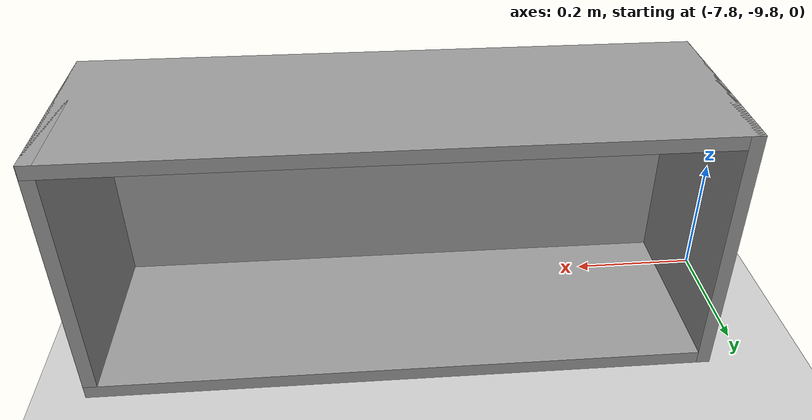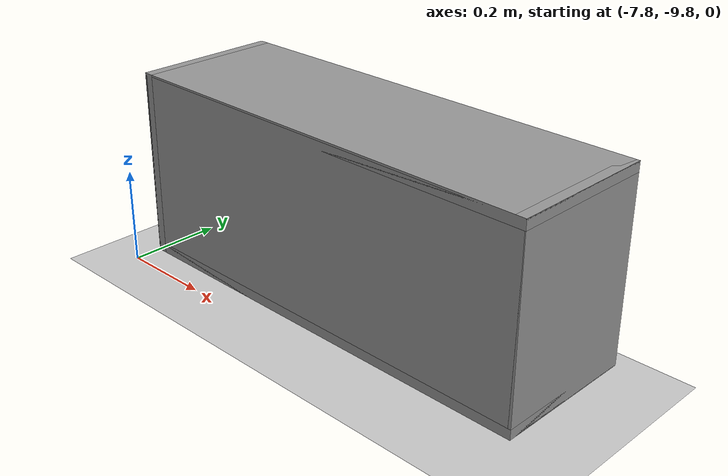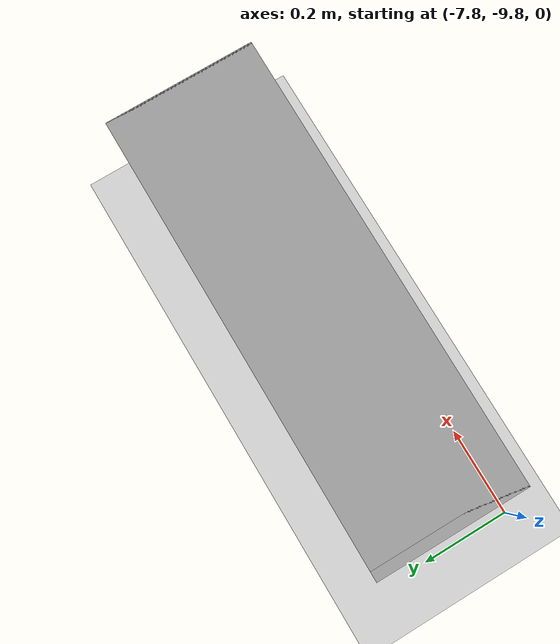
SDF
<sdf version="1.7">
 <world name="default">
  <model name="ground_plane">
   <static>1</static>
   <link name="link">
    <collision name="collision">
     <geometry><plane><normal>0 0 1</normal><size>100 100</size></plane></geometry>
     <surface><friction><ode><mu>100</mu><mu2>50</mu2></ode></friction></surface>
    </collision>
    <visual name="visual">
     <cast_shadows>0</cast_shadows>
     <geometry><plane><normal>0 0 1</normal><size>100 100</size></plane></geometry>
     <material>
      <script><uri>file://media/materials/scripts/gazebo.material</uri><name>Gazebo/Grey</name></script>
     </material>
    </visual>
   </link>
  </model>
  <model name="Wall_Cabinet_36x15W_clone_3_clone_clone">
   <link name="Wall_0">
    <pose>0 0 0.01 0 -0 0</pose>
    <inertial>
     <mass>1.9796</mass>
     <inertia><ixx>0.0145</ixx><iyy>0.1511</iyy><izz>0.1367</izz><ixy>0</ixy><ixz>0</ixz><iyz>0</iyz></inertia>
    </inertial>
    <collision name="Wall_0_Collision"><geometry><box><size>0.91 0.296 0.02</size></box></geometry></collision>
    <visual name="Wall_0_Visual">
     <geometry><box><size>0.91 0.296 0.02</size></box></geometry>
     <material>
      <script><uri>file://media/materials/scripts/gazebo.material</uri><name>Gazebo/Grey</name></script>
      <ambient>1 1 1 1</ambient>
     </material>
    </visual>
   </link>
   <joint name="0_2" type="fixed">
    <pose>-0.455 0 0 0 -0 0</pose>
    <parent>Wall_2</parent>
    <child>Wall_0</child>
    <axis><xyz>0 0 1</xyz><limit><lower>-1e+16</lower><upper>1e+16</upper></limit></axis>
   </joint>
   <joint name="0_4" type="fixed">
    <pose>0.455 0 0 0 -0 0</pose>
    <parent>Wall_4</parent>
    <child>Wall_0</child>
    <axis><xyz>0 0 1</xyz><limit><lower>-1e+16</lower><upper>1e+16</upper></limit></axis>
   </joint>
   <joint name="0_8" type="fixed">
    <pose>0 -0.148 0 0 -0 0</pose>
    <parent>Wall_8</parent>
    <child>Wall_0</child>
    <axis><xyz>0 0 1</xyz><limit><lower>-1e+16</lower><upper>1e+16</upper></limit></axis>
   </joint>
   <link name="Wall_2">
    <pose>-0.445 0 0.192 0 -0 0</pose>
    <inertial>
     <mass>0.8353</mass>
     <inertia><ixx>0.0061</ixx><iyy>0.0164</iyy><izz>0.0103</izz><ixy>0</ixy><ixz>0</ixz><iyz>0</iyz></inertia>
    </inertial>
    <collision name="Wall_2_Collision"><geometry><box><size>0.02 0.296 0.384</size></box></geometry></collision>
    <visual name="Wall_2_Visual">
     <geometry><box><size>0.02 0.296 0.384</size></box></geometry>
     <material>
      <script><uri>file://media/materials/scripts/gazebo.material</uri><name>Gazebo/Grey</name></script>
      <ambient>1 1 1 1</ambient>
     </material>
    </visual>
   </link>
   <link name="Wall_4">
    <pose>0.445 0 0.192 0 -0 0</pose>
    <inertial>
     <mass>0.8353</mass>
     <inertia><ixx>0.0061</ixx><iyy>0.0164</iyy><izz>0.0103</izz><ixy>0</ixy><ixz>0</ixz><iyz>0</iyz></inertia>
    </inertial>
    <collision name="Wall_4_Collision"><geometry><box><size>0.02 0.296 0.384</size></box></geometry></collision>
    <visual name="Wall_4_Visual">
     <geometry><box><size>0.02 0.296 0.384</size></box></geometry>
     <material>
      <script><uri>file://media/materials/scripts/gazebo.material</uri><name>Gazebo/Grey</name></script>
      <ambient>1 1 1 1</ambient>
     </material>
    </visual>
   </link>
   <link name="Wall_6">
    <pose>0 0 0.374 0 -0 0</pose>
    <inertial>
     <mass>1.9796</mass>
     <inertia><ixx>0.0145</ixx><iyy>0.1511</iyy><izz>0.1367</izz><ixy>0</ixy><ixz>0</ixz><iyz>0</iyz></inertia>
    </inertial>
    <collision name="Wall_6_Collision"><geometry><box><size>0.91 0.296 0.02</size></box></geometry></collision>
    <visual name="Wall_6_Visual">
     <geometry><box><size>0.91 0.296 0.02</size></box></geometry>
     <material>
      <script><uri>file://media/materials/scripts/gazebo.material</uri><name>Gazebo/Grey</name></script>
      <ambient>1 1 1 1</ambient>
     </material>
    </visual>
   </link>
   <joint name="6_2" type="fixed">
    <pose>-0.455 0 0 0 -0 0</pose>
    <parent>Wall_2</parent>
    <child>Wall_6</child>
    <axis><xyz>0 0 1</xyz><limit><lower>-1e+16</lower><upper>1e+16</upper></limit></axis>
   </joint>
   <joint name="6_4" type="fixed">
    <pose>0.455 0 0 0 -0 0</pose>
    <parent>Wall_4</parent>
    <child>Wall_6</child>
    <axis><xyz>0 0 1</xyz><limit><lower>-1e+16</lower><upper>1e+16</upper></limit></axis>
   </joint>
   <joint name="6_8" type="fixed">
    <pose>0 -0.148 0 0 -0 0</pose>
    <parent>Wall_8</parent>
    <child>Wall_6</child>
    <axis><xyz>0 0 1</xyz><limit><lower>-1e+16</lower><upper>1e+16</upper></limit></axis>
   </joint>
   <link name="Wall_8">
    <pose>0 -0.138 0.19 0 -0 0</pose>
    <inertial>
     <mass>2.5302</mass>
     <inertia><ixx>0.0305</ixx><iyy>0.1732</iyy><izz>0.2035</izz><ixy>0</ixy><ixz>0</ixz><iyz>0</iyz></inertia>
    </inertial>
    <collision name="Wall_8_Collision"><geometry><box><size>0.906 0.02 0.38</size></box></geometry></collision>
    <visual name="Wall_8_Visual">
     <geometry><box><size>0.906 0.02 0.38</size></box></geometry>
     <material>
      <script><uri>file://media/materials/scripts/gazebo.material</uri><name>Gazebo/Grey</name></script>
      <ambient>1 1 1 1</ambient>
     </material>
    </visual>
   </link>
   <joint name="8_2" type="fixed">
    <pose>-0.453 0 0 0 -0 0</pose>
    <parent>Wall_2</parent>
    <child>Wall_8</child>
    <axis><xyz>0 1 0</xyz><limit><lower>-1e+16</lower><upper>1e+16</upper></limit></axis>
   </joint>
   <joint name="8_4" type="fixed">
    <pose>0.453 0 0 0 -0 0</pose>
    <parent>Wall_4</parent>
    <child>Wall_8</child>
    <axis><xyz>0 1 0</xyz><limit><lower>-1e+16</lower><upper>1e+16</upper></limit></axis>
   </joint>
   <static>1</static>
   <pose>-7.26677 -9.64761 0.047595 0 0 -0.003742</pose>
  </model>
 </world>
</sdf>
